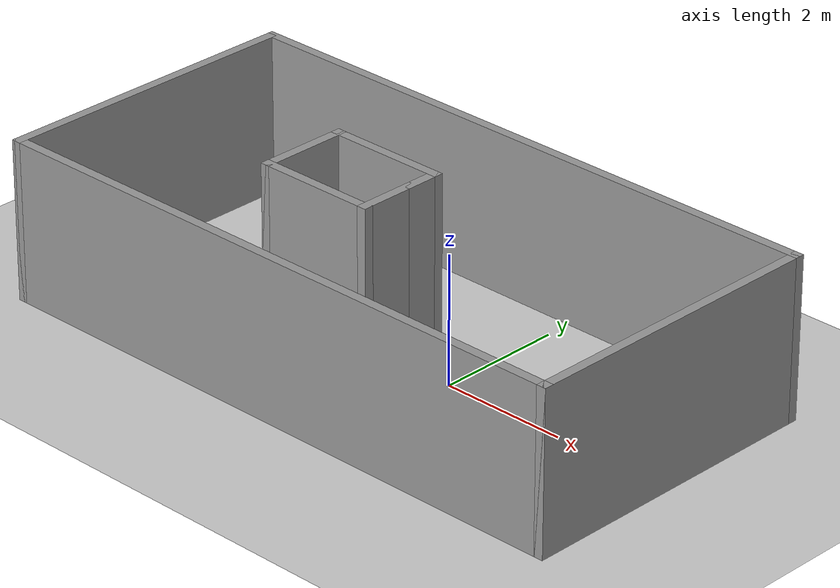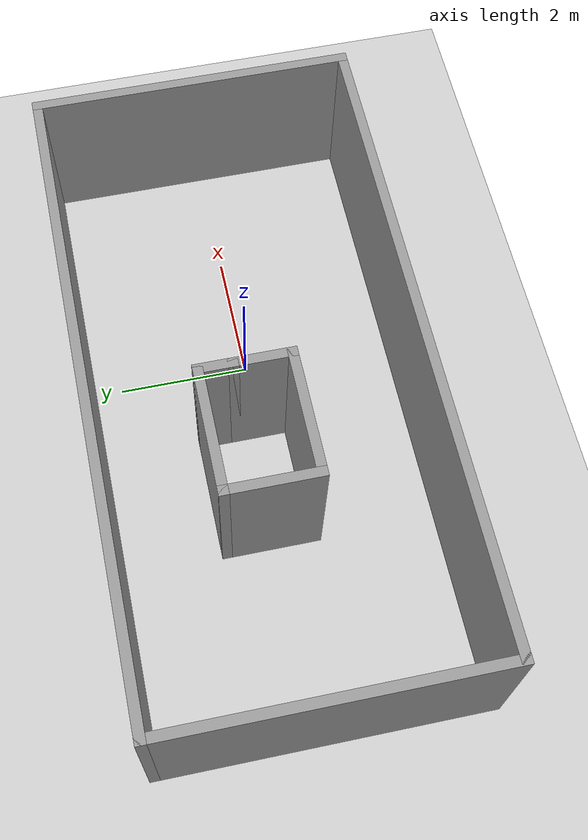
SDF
<sdf version="1.7">
 <world name="default">
  <light name="sun" type="directional">
   <pose>0 0 10 0 -0 0</pose>
   <diffuse>0.8 0.8 0.8 1</diffuse>
   <specular>0.2 0.2 0.2 1</specular>
   <attenuation>
    <range>1000</range>
    <constant>0.9</constant>
    <linear>0.01</linear>
    <quadratic>0.001</quadratic>
   </attenuation>
   <direction>-0.5 0.1 -0.9</direction>
   <spot><inner_angle>0</inner_angle><outer_angle>0</outer_angle><falloff>0</falloff></spot>
  </light>
  <model name="ground_plane">
   <static>1</static>
   <link name="link">
    <collision name="collision">
     <geometry><plane><normal>0 0 1</normal><size>100 100</size></plane></geometry>
     <surface><friction><ode><mu>100</mu><mu2>50</mu2></ode></friction></surface>
    </collision>
    <visual name="visual">
     <cast_shadows>0</cast_shadows>
     <geometry><plane><normal>0 0 1</normal><size>100 100</size></plane></geometry>
     <material>
      <script><uri>file://media/materials/scripts/gazebo.material</uri><name>Gazebo/Grey</name></script>
     </material>
    </visual>
   </link>
  </model>
  <gravity>0 0 -9.8</gravity>
  <magnetic_field>6e-06 2.3e-05 -4.2e-05</magnetic_field>
  <atmosphere type="adiabatic"/>
  <physics type="ode">
   <max_step_size>0.001</max_step_size>
   <real_time_factor>1</real_time_factor>
   <real_time_update_rate>1000</real_time_update_rate>
  </physics>
  <scene><ambient>0.4 0.4 0.4 1</ambient><background>0.7 0.7 0.7 1</background><shadows>1</shadows></scene>
  <audio><device>default</device></audio>
  <spherical_coordinates>
   <surface_model>EARTH_WGS84</surface_model>
   <latitude_deg>0</latitude_deg>
   <longitude_deg>0</longitude_deg>
   <elevation>0</elevation>
   <heading_deg>0</heading_deg>
  </spherical_coordinates>
  <model name="world_v1">
   <pose>-1.02827 0.059418 0 0 -0 0</pose>
   <link name="Wall_14">
    <collision name="Wall_14_Collision">
     <geometry><box><size>1.5 0.15 2.5</size></box></geometry>
     <pose>0 0 1.25 0 -0 0</pose>
    </collision>
    <visual name="Wall_14_Visual">
     <pose>0 0 1.25 0 -0 0</pose>
     <geometry><box><size>1.5 0.15 2.5</size></box></geometry>
     <material>
      <script><uri>file://media/materials/scripts/gazebo.material</uri><name>Gazebo/Grey</name></script>
      <ambient>1 1 1 1</ambient>
     </material>
     <meta><layer>0</layer></meta>
    </visual>
    <pose>-1.95614 0.151986 0 0 -0 -1.5708</pose>
   </link>
   <link name="Wall_15">
    <collision name="Wall_15_Collision">
     <geometry><box><size>2 0.15 2.5</size></box></geometry>
     <pose>0 0 1.25 0 -0 0</pose>
    </collision>
    <visual name="Wall_15_Visual">
     <pose>0 0 1.25 0 -0 0</pose>
     <geometry><box><size>2 0.15 2.5</size></box></geometry>
     <material>
      <script><uri>file://media/materials/scripts/gazebo.material</uri><name>Gazebo/Grey</name></script>
      <ambient>1 1 1 1</ambient>
     </material>
     <meta><layer>0</layer></meta>
    </visual>
    <pose>-1.03114 -0.523014 0 0 -0 0</pose>
   </link>
   <link name="Wall_16">
    <collision name="Wall_16_Collision">
     <geometry><box><size>1 0.15 2.5</size></box></geometry>
     <pose>0 0 1.25 0 -0 0</pose>
    </collision>
    <visual name="Wall_16_Visual">
     <pose>0 0 1.25 0 -0 0</pose>
     <geometry><box><size>1 0.15 2.5</size></box></geometry>
     <material>
      <script><uri>file://media/materials/scripts/gazebo.material</uri><name>Gazebo/Grey</name></script>
      <ambient>1 1 1 1</ambient>
     </material>
     <meta><layer>0</layer></meta>
    </visual>
    <pose>-0.106144 -0.098014 0 0 -0 1.5708</pose>
   </link>
   <link name="Wall_35">
    <collision name="Wall_35_Collision">
     <geometry><box><size>2 0.15 2.5</size></box></geometry>
     <pose>0 0 1.25 0 -0 0</pose>
    </collision>
    <visual name="Wall_35_Visual">
     <pose>0 0 1.25 0 -0 0</pose>
     <geometry><box><size>2 0.15 2.5</size></box></geometry>
     <material>
      <script><uri>file://media/materials/scripts/gazebo.material</uri><name>Gazebo/Grey</name></script>
      <ambient>1 1 1 1</ambient>
     </material>
     <meta><layer>0</layer></meta>
    </visual>
    <pose>-1.03114 0.826986 0 0 -0 0</pose>
   </link>
   <link name="Wall_36">
    <collision name="Wall_36_Collision">
     <geometry><box><size>0.65 0.15 2.5</size></box></geometry>
     <pose>0 0 1.25 0 -0 0</pose>
    </collision>
    <visual name="Wall_36_Visual">
     <pose>0 0 1.25 0 -0 0</pose>
     <geometry><box><size>0.65 0.15 2.5</size></box></geometry>
     <material>
      <script><uri>file://media/materials/scripts/gazebo.material</uri><name>Gazebo/Grey</name></script>
      <ambient>1 1 1 1</ambient>
     </material>
     <meta><layer>0</layer></meta>
    </visual>
    <pose>-0.106144 0.576986 0 0 -0 -1.5708</pose>
   </link>
   <link name="Wall_38">
    <collision name="Wall_38_Collision">
     <geometry><box><size>10 0.15 2.5</size></box></geometry>
     <pose>0 0 1.25 0 -0 0</pose>
    </collision>
    <visual name="Wall_38_Visual">
     <pose>0 0 1.25 0 -0 0</pose>
     <geometry><box><size>10 0.15 2.5</size></box></geometry>
     <material>
      <script><uri>file://media/materials/scripts/gazebo.material</uri><name>Gazebo/Grey</name></script>
      <ambient>1 1 1 1</ambient>
     </material>
     <meta><layer>0</layer></meta>
    </visual>
    <pose>0 -2.425 0 0 -0 0</pose>
   </link>
   <link name="Wall_39">
    <collision name="Wall_39_Collision">
     <geometry><box><size>5 0.15 2.5</size></box></geometry>
     <pose>0 0 1.25 0 -0 0</pose>
    </collision>
    <visual name="Wall_39_Visual">
     <pose>0 0 1.25 0 -0 0</pose>
     <geometry><box><size>5 0.15 2.5</size></box></geometry>
     <material>
      <script><uri>file://media/materials/scripts/gazebo.material</uri><name>Gazebo/Grey</name></script>
      <ambient>1 1 1 1</ambient>
     </material>
     <meta><layer>0</layer></meta>
    </visual>
    <pose>4.925 0 0 0 -0 1.5708</pose>
   </link>
   <link name="Wall_40">
    <collision name="Wall_40_Collision">
     <geometry><box><size>10 0.15 2.5</size></box></geometry>
     <pose>0 0 1.25 0 -0 0</pose>
    </collision>
    <visual name="Wall_40_Visual">
     <pose>0 0 1.25 0 -0 0</pose>
     <geometry><box><size>10 0.15 2.5</size></box></geometry>
     <material>
      <script><uri>file://media/materials/scripts/gazebo.material</uri><name>Gazebo/Grey</name></script>
      <ambient>1 1 1 1</ambient>
     </material>
     <meta><layer>0</layer></meta>
    </visual>
    <pose>0 2.425 0 0 -0 3.14159</pose>
   </link>
   <link name="Wall_41">
    <collision name="Wall_41_Collision">
     <geometry><box><size>5 0.15 2.5</size></box></geometry>
     <pose>0 0 1.25 0 -0 0</pose>
    </collision>
    <visual name="Wall_41_Visual">
     <pose>0 0 1.25 0 -0 0</pose>
     <geometry><box><size>5 0.15 2.5</size></box></geometry>
     <material>
      <script><uri>file://media/materials/scripts/gazebo.material</uri><name>Gazebo/Grey</name></script>
      <ambient>1 1 1 1</ambient>
     </material>
     <meta><layer>0</layer></meta>
    </visual>
    <pose>-4.925 0 0 0 -0 -1.5708</pose>
   </link>
   <static>1</static>
  </model>
 </world>
</sdf>
